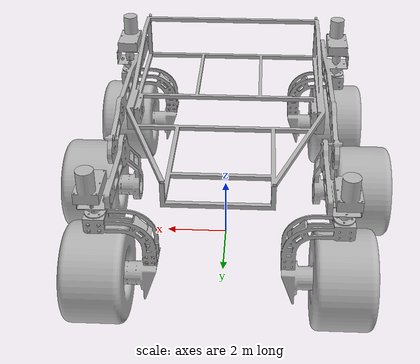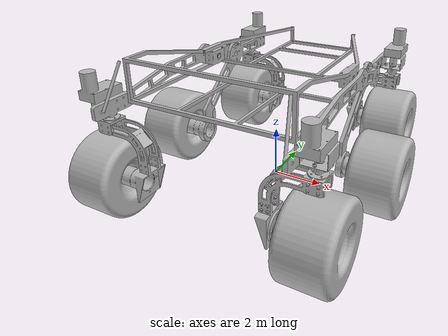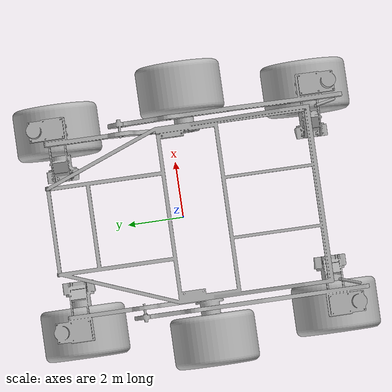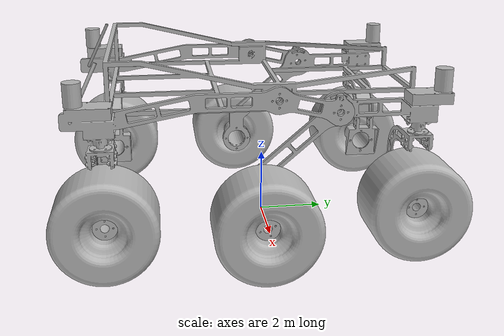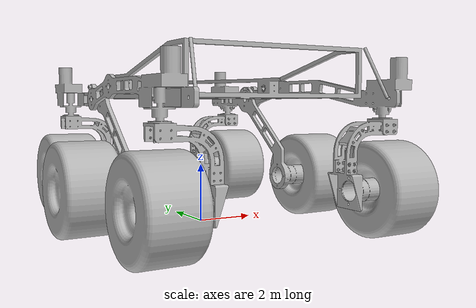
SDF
<?xml version='1.0'?>
<sdf version='1.4'>
<model name="MSI Rover">
  <static>0</static>

<!---------------------------      Chassis Assembly Begins       --------------------------->

  <link name='Chassis'>
    <self_collide>1</self_collide>
    <pose>0 0 4.72 0 0 0</pose>
    <collision name='Chassis_Collision'>
      <geometry>
        <mesh>
          <scale>0.01 0.01 0.01</scale>
          <uri>model://msi_rover/meshes/Chassis.STL</uri>
        </mesh>
      </geometry>
<!------------ TODO ------------>
    </collision>
    <visual name='Chassis_Visual'>
      <geometry>
        <mesh>
          <scale>0.01 0.01 0.01</scale>
          <uri>model://msi_rover/meshes/Chassis.STL</uri>
        </mesh>
      </geometry>
<!------------ TODO ------------>
    </visual>
<!------------ TODO ------------>
  </link>

<!---------------------------       Chassis Assembly Ends        --------------------------->
<!--------------------------- Left Rocker-Bogie Assembly Begins  --------------------------->

  <link name='Left_Rocker'>
    <self_collide>1</self_collide>
    <pose>-3.27 0 4.72 0 0 0</pose>
    <collision name='Left_Rocker_Collision'>
      <geometry>
        <mesh>
          <scale>0.01 0.01 0.01</scale>
          <uri>model://msi_rover/meshes/Rocker_L.STL</uri>
        </mesh>
      </geometry>
<!------------ TODO ------------>
    </collision>
    <visual name='Left_Rocker_Visual'>
      <geometry>
        <mesh>
          <scale>0.01 0.01 0.01</scale>
          <uri>model://msi_rover/meshes/Rocker_L.STL</uri>
        </mesh>
      </geometry>
<!------------ TODO ------------>
    </visual>
<!------------ TODO ------------>
  </link>

  <link name='Left_Bogie'>
    <self_collide>1</self_collide>
    <pose>-2.94 1.75 4.32 0 0 0</pose>
    <collision name='Left_Bogie_Collision'>
      <geometry>
        <mesh>
          <scale>0.01 0.01 0.01</scale>
          <uri>model://msi_rover/meshes/Bogie_L.STL</uri>
        </mesh>
      </geometry>
<!------------ TODO ------------>
    </collision>
    <visual name='Left_Bogie_Visual'>
      <geometry>
        <mesh>
          <scale>0.01 0.01 0.01</scale>
          <uri>model://msi_rover/meshes/Bogie_L.STL</uri>
        </mesh>
      </geometry>
<!------------ TODO ------------>
    </visual>
<!------------ TODO ------------>
  </link>

  <link name='Left_Rear_Steering'>
    <self_collide>1</self_collide>
    <pose>-3.81 -4.9 3.68 0 0 0</pose>
    <collision name='Left_Rear_Steering_Collision'>
      <geometry>
        <mesh>
          <scale>0.01 0.01 0.01</scale>
          <uri>model://msi_rover/meshes/C_Assembly_L.STL</uri>
        </mesh>
      </geometry>
<!------------ TODO ------------>
    </collision>
    <visual name='Left_Rear_Steering_Visual'>
      <geometry>
        <mesh>
          <scale>0.01 0.01 0.01</scale>
          <uri>model://msi_rover/meshes/C_Assembly_L.STL</uri>
        </mesh>
      </geometry>
<!------------ TODO ------------>
    </visual>
<!------------ TODO ------------>
  </link>

  <link name='Left_Front_Steering'>
    <self_collide>1</self_collide>
    <pose>-3.48 4.00 3.68 0 0 0</pose>
    <collision name='Left_Front_Steering_Collision'>
      <geometry>
        <mesh>
          <scale>0.01 0.01 0.01</scale>
          <uri>model://msi_rover/meshes/C_Assembly_L.STL</uri>
        </mesh>
      </geometry>
<!------------ TODO ------------>
    </collision>
    <visual name='Left_Front_Steering_Visual'>
      <geometry>
        <mesh>
          <scale>0.01 0.01 0.01</scale>
          <uri>model://msi_rover/meshes/C_Assembly_L.STL</uri>
        </mesh>
      </geometry>
<!------------ TODO ------------>
    </visual>
<!------------ TODO ------------>
  </link>

  <link name='Left_Rear_Tyre'>
    <self_collide>1</self_collide>
    <pose>-3.91 -4.9 1.50 0 0 0</pose>
    <collision name='Left_Rear_Tyre_Collision'>
      <geometry>
        <mesh>
          <scale>0.01 0.01 0.01</scale>
          <uri>model://msi_rover/meshes/Tyre.STL</uri>
        </mesh>
      </geometry>
<!------------ TODO ------------>
    </collision>
    <visual name='Left_Rear_Tyre_Visual'>
      <geometry>
        <mesh>
          <scale>0.01 0.01 0.01</scale>
          <uri>model://msi_rover/meshes/Tyre.STL</uri>
        </mesh>
      </geometry>
<!------------ TODO ------------>
    </visual>
<!------------ TODO ------------>
  </link>

  <link name='Left_Middle_Tyre'>
    <self_collide>1</self_collide>
    <pose>-4.48 -0.5 1.50 0 0 0</pose>
    <collision name='Left_Middle_Tyre_Collision'>
      <geometry>
        <mesh>
          <scale>0.01 0.01 0.01</scale>
          <uri>model://msi_rover/meshes/Tyre.STL</uri>
        </mesh>
      </geometry>
<!------------ TODO ------------>
    </collision>
    <visual name='Left_Middle_Tyre_Visual'>
      <geometry>
        <mesh>
          <scale>0.01 0.01 0.01</scale>
          <uri>model://msi_rover/meshes/Tyre.STL</uri>
        </mesh>
      </geometry>
<!------------ TODO ------------>
    </visual>
<!------------ TODO ------------>
  </link>

  <link name='Left_Front_Tyre'>
    <self_collide>1</self_collide>
    <pose>-3.58 4.00 1.50 0 0 0</pose>
    <collision name='Left_Front_Tyre_Collision'>
      <geometry>
        <mesh>
          <scale>0.01 0.01 0.01</scale>
          <uri>model://msi_rover/meshes/Tyre.STL</uri>
        </mesh>
      </geometry>
<!------------ TODO ------------>
    </collision>
    <visual name='Left_Front_Tyre_Visual'>
      <geometry>
        <mesh>
          <scale>0.01 0.01 0.01</scale>
          <uri>model://msi_rover/meshes/Tyre.STL</uri>
        </mesh>
      </geometry>
<!------------ TODO ------------>
    </visual>
<!------------ TODO ------------>
  </link>

<!---------------------------         Joints Subsection          --------------------------->

  <joint type="revolute" name="Left_Rocker_Joint">
    <pose>0 0 0 0 0 0</pose>
    <child>Left_Rocker</child>
    <parent>Chassis</parent>
    <axis>
      <xyz>1 0 0</xyz>
<!------------ TODO ------------>
    </axis>
<!------------ TODO ------------>
  </joint>

  <joint type="revolute" name="Left_Bogie_Joint">
    <pose>0 0 0 0 0 0</pose>
    <child>Left_Bogie</child>
    <parent>Left_Rocker</parent>
    <axis>
      <xyz>1 0 0</xyz>
<!------------ TODO ------------>
    </axis>
<!------------ TODO ------------>
  </joint>

  <joint type="revolute" name="Left_Rear_Steering_Joint">
    <pose>0 0 0 0 0 0</pose>
    <child>Left_Rear_Steering</child>
    <parent>Left_Rocker</parent>
    <axis>
      <xyz>0 0 -1</xyz>
<!------------ TODO ------------>
    </axis>
<!------------ TODO ------------>
  </joint>

  <joint type="revolute" name="Left_Front_Steering_Joint">
    <pose>0 0 0 0 0 0</pose>
    <child>Left_Front_Steering</child>
    <parent>Left_Bogie</parent>
    <axis>
      <xyz>0 0 -1</xyz>
<!------------ TODO ------------>
    </axis>
<!------------ TODO ------------>
  </joint>

  <joint type="revolute" name="Left_Rear_Tyre_Joint">
    <pose>0 0 0 0 0 0</pose>
    <child>Left_Rear_Tyre</child>
    <parent>Left_Rear_Steering</parent>
    <axis>
      <xyz>1 0 0</xyz>
<!------------ TODO ------------>
    </axis>
<!------------ TODO ------------>
  </joint>

  <joint type="revolute" name="Left_Middle_Tyre_Joint">
    <pose>0 0 0 0 0 0</pose>
    <child>Left_Middle_Tyre</child>
    <parent>Left_Bogie</parent>
    <axis>
      <xyz>1 0 0</xyz>
<!------------ TODO ------------>
    </axis>
<!------------ TODO ------------>
  </joint>

  <joint type="revolute" name="Left_Front_Tyre_Joint">
    <pose>0 0 0 0 0 0</pose>
    <child>Left_Front_Tyre</child>
    <parent>Left_Front_Steering</parent>
    <axis>
      <xyz>1 0 0</xyz>
<!------------ TODO ------------>
    </axis>
<!------------ TODO ------------>
  </joint>

<!---------------------------  Left Rocker-Bogie Assembly Ends   --------------------------->
<!--------------------------- Right Rocker-Bogie Assembly Begins --------------------------->

  <link name='Right_Rocker'>
    <self_collide>1</self_collide>
    <pose>3.27 0 4.72 0 0 0</pose>
    <collision name='Right_Rocker_Collision'>
      <geometry>
        <mesh>
          <scale>0.01 0.01 0.01</scale>
          <uri>model://msi_rover/meshes/Rocker_R.STL</uri>
        </mesh>
      </geometry>
<!------------ TODO ------------>
    </collision>
    <visual name='Right_Rocker_Visual'>
      <geometry>
        <mesh>
          <scale>0.01 0.01 0.01</scale>
          <uri>model://msi_rover/meshes/Rocker_R.STL</uri>
        </mesh>
      </geometry>
<!------------ TODO ------------>
    </visual>
<!------------ TODO ------------>
  </link>

  <link name='Right_Bogie'>
    <self_collide>1</self_collide>
    <pose>2.94 1.75 4.32 0 0 0</pose>
    <collision name='Right_Bogie_Collision'>
      <geometry>
        <mesh>
          <scale>0.01 0.01 0.01</scale>
          <uri>model://msi_rover/meshes/Bogie_R.STL</uri>
        </mesh>
      </geometry>
<!------------ TODO ------------>
    </collision>
    <visual name='Right_Bogie_Visual'>
      <geometry>
        <mesh>
          <scale>0.01 0.01 0.01</scale>
          <uri>model://msi_rover/meshes/Bogie_R.STL</uri>
        </mesh>
      </geometry>
<!------------ TODO ------------>
    </visual>
<!------------ TODO ------------>
  </link>

  <link name='Right_Rear_Steering'>
    <self_collide>1</self_collide>
    <pose>3.81 -4.9 3.68 0 0 0</pose>
    <collision name='Right_Rear_Steering_Collision'>
      <geometry>
        <mesh>
          <scale>0.01 0.01 0.01</scale>
          <uri>model://msi_rover/meshes/C_Assembly_R.STL</uri>
        </mesh>
      </geometry>
<!------------ TODO ------------>
    </collision>
    <visual name='Right_Rear_Steering_Visual'>
      <geometry>
        <mesh>
          <scale>0.01 0.01 0.01</scale>
          <uri>model://msi_rover/meshes/C_Assembly_R.STL</uri>
        </mesh>
      </geometry>
<!------------ TODO ------------>
    </visual>
<!------------ TODO ------------>
  </link>

  <link name='Right_Front_Steering'>
    <self_collide>1</self_collide>
    <pose>3.48 4.00 3.68 0 0 0</pose>
    <collision name='Right_Front_Steering_Collision'>
      <geometry>
        <mesh>
          <scale>0.01 0.01 0.01</scale>
          <uri>model://msi_rover/meshes/C_Assembly_R.STL</uri>
        </mesh>
      </geometry>
<!------------ TODO ------------>
    </collision>
    <visual name='Right_Front_Steering_Visual'>
      <geometry>
        <mesh>
          <scale>0.01 0.01 0.01</scale>
          <uri>model://msi_rover/meshes/C_Assembly_R.STL</uri>
        </mesh>
      </geometry>
<!------------ TODO ------------>
    </visual>
<!------------ TODO ------------>
  </link>

  <link name='Right_Rear_Tyre'>
    <self_collide>1</self_collide>
    <pose>3.91 -4.9 1.50 0 0 0</pose>
    <collision name='Right_Rear_Tyre_Collision'>
      <geometry>
        <mesh>
          <scale>0.01 0.01 0.01</scale>
          <uri>model://msi_rover/meshes/Tyre.STL</uri>
        </mesh>
      </geometry>
<!------------ TODO ------------>
    </collision>
    <visual name='Right_Rear_Tyre_Visual'>
      <geometry>
        <mesh>
          <scale>0.01 0.01 0.01</scale>
          <uri>model://msi_rover/meshes/Tyre.STL</uri>
        </mesh>
      </geometry>
<!------------ TODO ------------>
    </visual>
<!------------ TODO ------------>
  </link>

  <link name='Right_Middle_Tyre'>
    <self_collide>1</self_collide>
    <pose>4.48 -0.5 1.50 0 0 0</pose>
    <collision name='Right_Middle_Tyre_Collision'>
      <geometry>
        <mesh>
          <scale>0.01 0.01 0.01</scale>
          <uri>model://msi_rover/meshes/Tyre.STL</uri>
        </mesh>
      </geometry>
<!------------ TODO ------------>
    </collision>
    <visual name='Right_Middle_Tyre_Visual'>
      <geometry>
        <mesh>
          <scale>0.01 0.01 0.01</scale>
          <uri>model://msi_rover/meshes/Tyre.STL</uri>
        </mesh>
      </geometry>
<!------------ TODO ------------>
    </visual>
<!------------ TODO ------------>
  </link>

  <link name='Right_Front_Tyre'>
    <self_collide>1</self_collide>
    <pose>3.58 4.00 1.50 0 0 0</pose>
    <collision name='Right_Front_Tyre_Collision'>
      <geometry>
        <mesh>
          <scale>0.01 0.01 0.01</scale>
          <uri>model://msi_rover/meshes/Tyre.STL</uri>
        </mesh>
      </geometry>
<!------------ TODO ------------>
    </collision>
    <visual name='Right_Front_Tyre_Visual'>
      <geometry>
        <mesh>
          <scale>0.01 0.01 0.01</scale>
          <uri>model://msi_rover/meshes/Tyre.STL</uri>
        </mesh>
      </geometry>
<!------------ TODO ------------>
    </visual>
<!------------ TODO ------------>
  </link>

<!---------------------------         Joints Subsection          --------------------------->

  <joint type="revolute" name="Right_Rocker_Joint">
    <pose>0 0 0 0 0 0</pose>
    <child>Right_Rocker</child>
    <parent>Chassis</parent>
    <axis>
      <xyz>1 0 0</xyz>
<!------------ TODO ------------>
    </axis>
<!------------ TODO ------------>
  </joint>

  <joint type="revolute" name="Right_Bogie_Joint">
    <pose>0 0 0 0 0 0</pose>
    <child>Right_Bogie</child>
    <parent>Right_Rocker</parent>
    <axis>
      <xyz>1 0 0</xyz>
<!------------ TODO ------------>
    </axis>
<!------------ TODO ------------>
  </joint>

  <joint type="revolute" name="Right_Rear_Steering_Joint">
    <pose>0 0 0 0 0 0</pose>
    <child>Right_Rear_Steering</child>
    <parent>Right_Rocker</parent>
    <axis>
      <xyz>0 0 -1</xyz>
<!------------ TODO ------------>
    </axis>
<!------------ TODO ------------>
  </joint>

  <joint type="revolute" name="Right_Front_Steering_Joint">
    <pose>0 0 0 0 0 0</pose>
    <child>Right_Front_Steering</child>
    <parent>Right_Bogie</parent>
    <axis>
      <xyz>0 0 -1</xyz>
<!------------ TODO ------------>
    </axis>
<!------------ TODO ------------>
  </joint>

  <joint type="revolute" name="Right_Rear_Tyre_Joint">
    <pose>0 0 0 0 0 0</pose>
    <child>Right_Rear_Tyre</child>
    <parent>Right_Rear_Steering</parent>
    <axis>
      <xyz>1 0 0</xyz>
<!------------ TODO ------------>
    </axis>
<!------------ TODO ------------>
  </joint>

  <joint type="revolute" name="Right_Middle_Tyre_Joint">
    <pose>0 0 0 0 0 0</pose>
    <child>Right_Middle_Tyre</child>
    <parent>Right_Bogie</parent>
    <axis>
      <xyz>1 0 0</xyz>
<!------------ TODO ------------>
    </axis>
<!------------ TODO ------------>
  </joint>

  <joint type="revolute" name="Right_Front_Tyre_Joint">
    <pose>0 0 0 0 0 0</pose>
    <child>Right_Front_Tyre</child>
    <parent>Right_Front_Steering</parent>
    <axis>
      <xyz>1 0 0</xyz>
<!------------ TODO ------------>
    </axis>
<!------------ TODO ------------>
  </joint>

<!---------------------------  Right Rocker-Bogie Assembly Ends  --------------------------->
<!---------------------------  Triangle Support Assembly Begins  --------------------------->
<!------------------------  TODO: REPAIR AND COMPLETE THIS ASSEMBLY ------------------------>
  <link name='Left_Diff_Support'>
    <self_collide>1</self_collide>
    <pose>-3.085 -5.34 5.08 -0.45 0.15 0</pose>
    <collision name='Left_Diff_Support_Collision'>
      <geometry>
        <cylinder>
          <radius>0.05</radius>
          <length>1.7</length>
        </cylinder>
      </geometry>
<!------------ TODO ------------>
    </collision>
    <visual name='Left_Diff_Support_Visual'>
      <geometry>
        <cylinder>
          <radius>0.05</radius>
          <length>1.7</length>
        </cylinder>
      </geometry>
<!------------ TODO ------------>
    </visual>
<!------------ TODO ------------>
  </link>

  <link name='Right_Diff_Support'>
    <self_collide>1</self_collide>
    <pose>3.085 -5.34 5.08 -0.45 -0.15 0</pose>
    <collision name='Right_Diff_Support_Collision'>
      <geometry>
        <cylinder>
          <radius>0.05</radius>
          <length>1.7</length>
        </cylinder>
      </geometry>
<!------------ TODO ------------>
    </collision>
    <visual name='Right_Diff_Support_Visual'>
      <geometry>
        <cylinder>
          <radius>0.05</radius>
          <length>1.7</length>
        </cylinder>
      </geometry>
<!------------ TODO ------------>
    </visual>
<!------------ TODO ------------>
  </link>

<!---------------------------         Joints Subsection          --------------------------->

  <joint type="revolute" name="Right_Lower_Triangle_Rod_Joint">
    <pose>0.75 0 0 0 0 0</pose>
    <child>Lower_Triangle_Rod</child>
    <parent>Right_Triangle</parent>
    <axis>
      <xyz>0 1 0</xyz>
<!------------ TODO ------------>
    </axis>
<!------------ TODO ------------>
  </joint>

  <joint type="revolute" name="Left_Lower_Triangle_Rod_Joint">
    <pose>-0.75 0 0 0 0 0</pose>
    <child>Lower_Triangle_Rod</child>
    <parent>Left_Triangle</parent>
    <axis>
      <xyz>0 1 0</xyz>
<!------------ TODO ------------>
    </axis>
<!------------ TODO ------------>
  </joint>

  <joint type="revolute" name="Right_Upper_Triangle_Rod_Joint">
    <pose>0.75 0 0 0 0 0</pose>
    <child>Upper_Triangle_Rod</child>
    <parent>Right_Triangle</parent>
    <axis>
      <xyz>0 1 0</xyz>
<!------------ TODO ------------>
    </axis>
<!------------ TODO ------------>
  </joint>

  <joint type="revolute" name="Left_Upper_Triangle_Rod_Joint">
    <pose>-0.75 0 0 0 0 0</pose>
    <child>Upper_Triangle_Rod</child>
    <parent>Left_Triangle</parent>
    <axis>
      <xyz>0 1 0</xyz>
<!------------ TODO ------------>
    </axis>
<!------------ TODO ------------>
  </joint>

  <joint type="revolute2" name="Left_Diff_Support_Triangle_Joint">
    <pose>0 0 0.88 0 0 0</pose>
    <child>Left_Diff_Support</child>
    <parent>Chassis</parent>
    <axis>
      <xyz>0 1 0</xyz>
<!------------ TODO ------------>
    </axis>
    <axis2>
      <xyz>0 0 1</xyz>
<!------------ TODO ------------>
    </axis2>
<!------------ TODO ------------>
  </joint>

  <joint type="revolute2" name="Left_Diff_Support_Rocker_Joint">
    <pose>0 0 -0.86 0 0 0</pose>
    <child>Left_Diff_Support</child>
    <parent>Left_Rocker</parent>
    <axis>
      <xyz>1 0 0</xyz>
<!------------ TODO ------------>
    </axis>
    <axis2>
      <xyz>0 0 1</xyz>
<!------------ TODO ------------>
    </axis2>
<!------------ TODO ------------>
  </joint>

  <joint type="revolute2" name="Right_Diff_Support_Triangle_Joint">
    <pose>0 0 0.88 0 0 0</pose>
    <child>Right_Diff_Support</child>
    <parent>Chassis</parent>
    <axis>
      <xyz>0 1 0</xyz>
<!------------ TODO ------------>
    </axis>
    <axis2>
      <xyz>0 0 1</xyz>
<!------------ TODO ------------>
    </axis2>
<!------------ TODO ------------>
  </joint>

  <joint type="revolute2" name="Right_Diff_Support_Rocker_Joint">
    <pose>0 0 -0.86 0 0 0</pose>
    <child>Right_Diff_Support</child>
    <parent>Right_Rocker</parent>
    <axis>
      <xyz>1 0 0</xyz>
<!------------ TODO ------------>
    </axis>
    <axis2>
      <xyz>0 0 1</xyz>
<!------------ TODO ------------>
    </axis2>
<!------------ TODO ------------>
  </joint>

<!---------------------------   Triangle Support Assembly Ends   --------------------------->

</model>
</sdf>
